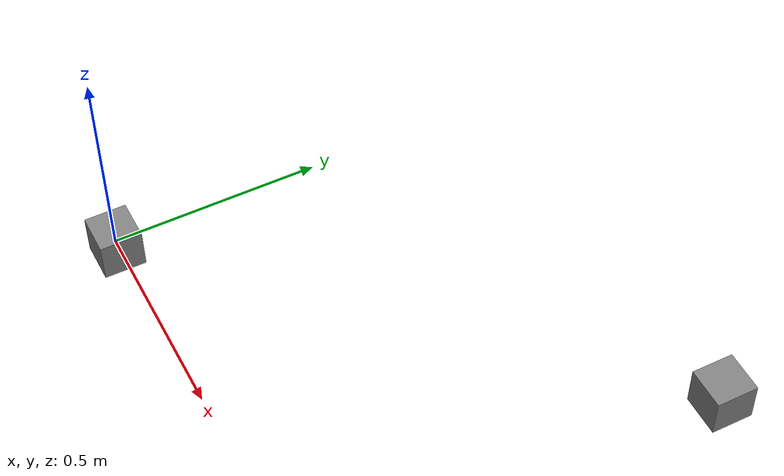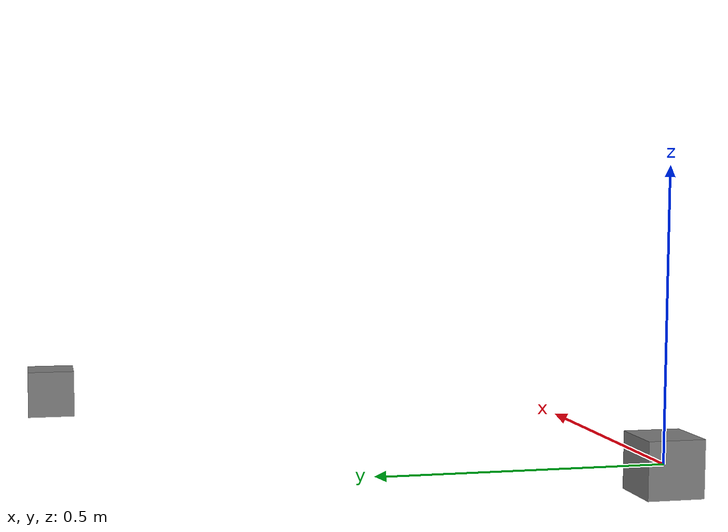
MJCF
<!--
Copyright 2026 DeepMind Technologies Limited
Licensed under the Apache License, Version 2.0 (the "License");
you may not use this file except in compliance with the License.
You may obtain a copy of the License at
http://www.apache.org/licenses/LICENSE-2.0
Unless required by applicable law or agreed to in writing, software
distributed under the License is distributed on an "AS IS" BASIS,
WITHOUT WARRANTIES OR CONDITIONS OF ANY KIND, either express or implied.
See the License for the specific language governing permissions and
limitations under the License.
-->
<mujoco>
  <option gravity="0 0 -1"/>

  <worldbody>
    <body name="body1">
      <geom type="box" size="0.05 0.05 0.05"/>
      <site name="sensor"/>
    </body>
    <body name="body2" pos="0 1 0">
      <joint type="free"/>
      <inertial pos="1 0 0" mass="1" diaginertia="1 1 1"/>
      <geom type="box" size="0.05 0.05 0.05" pos="1 0 0"/>
    </body>
  </worldbody>

  <equality>
    <weld body1="body1" body2="body2"/>
  </equality>

  <sensor>
    <force site="sensor" user="0 0 2"/>
    <torque site="sensor" user="1 -1 0"/>
  </sensor>
</mujoco>
